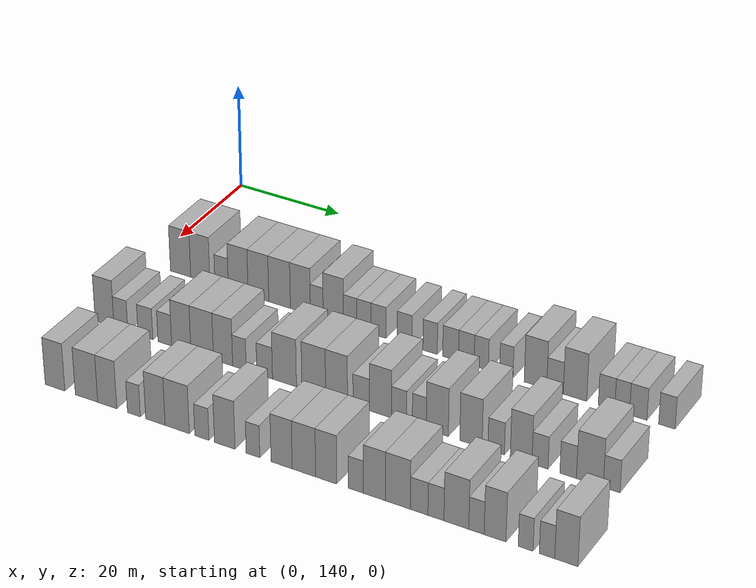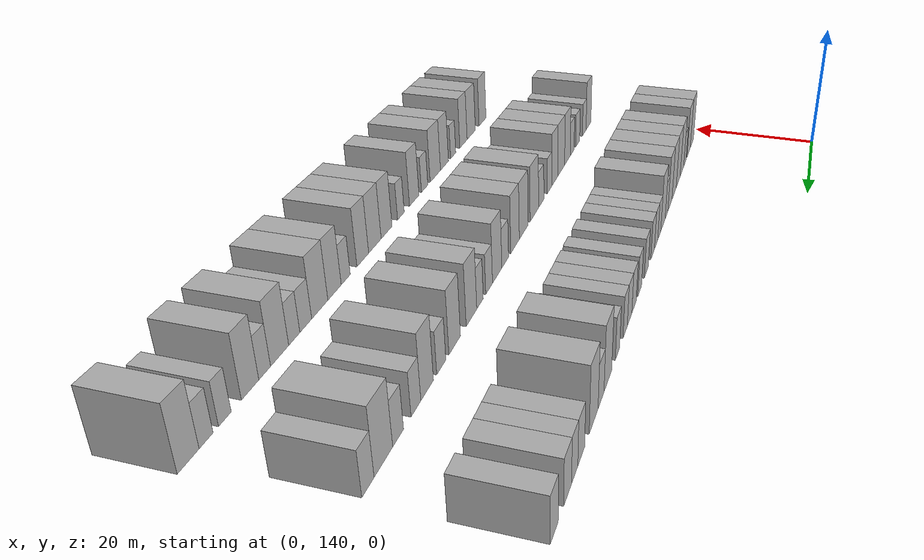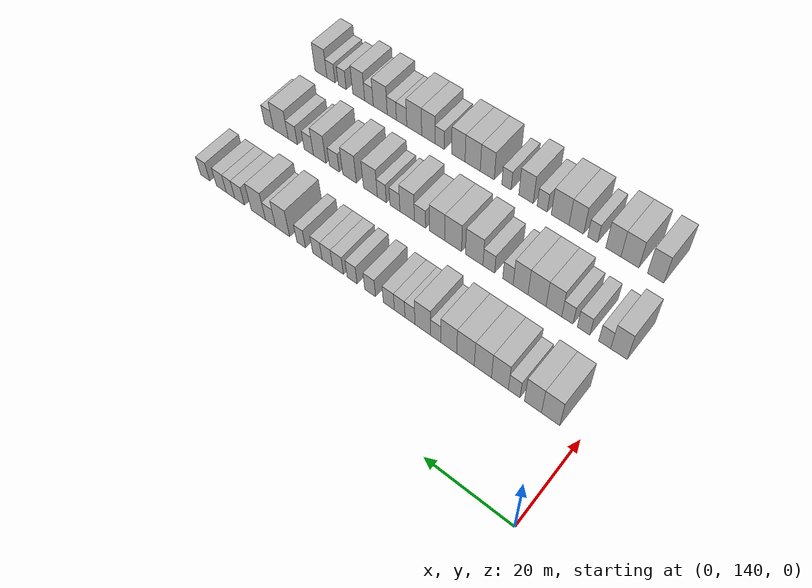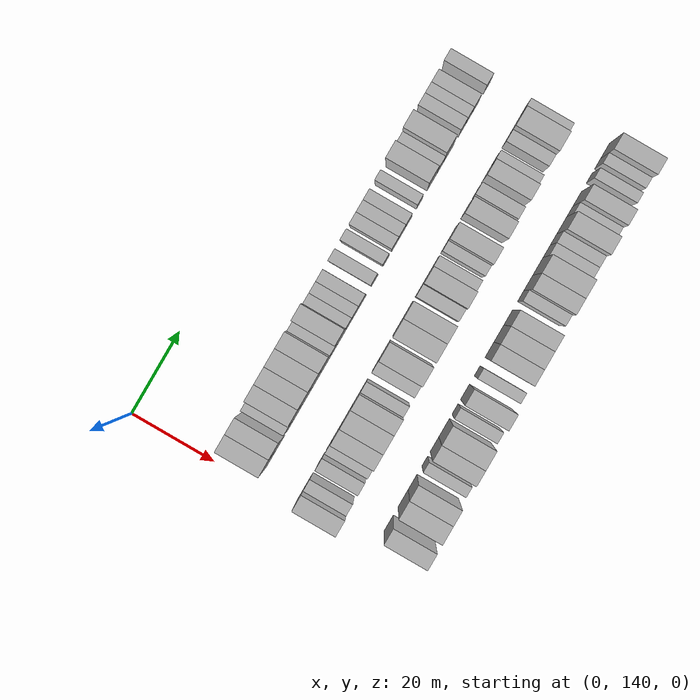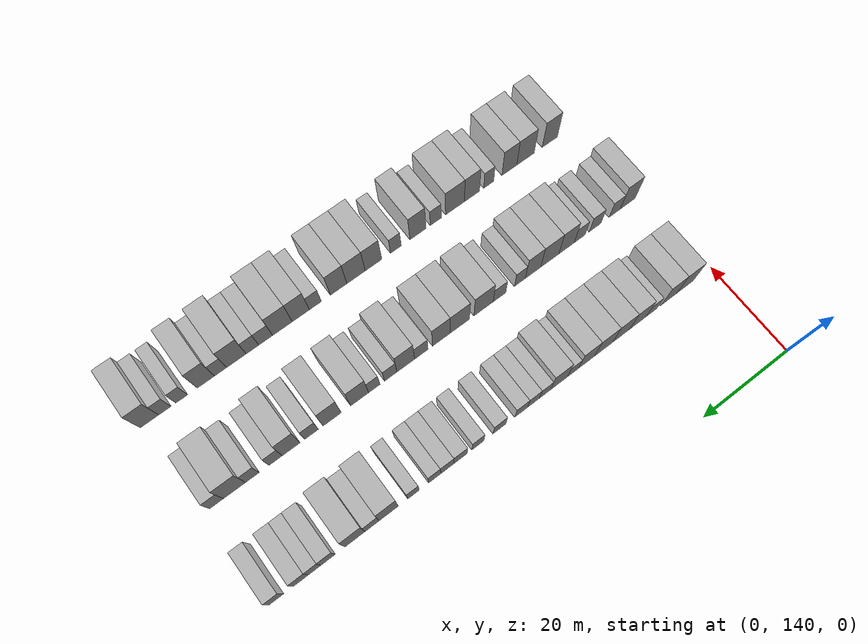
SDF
<sdf version="1.6">
 <world name="default">
  <model name="building_97">
   <static>1</static>
   <pose>25.0000 146.4809 0 0.000000 0.000000 0.000000</pose>
   <link name="link">
    <pose>0 0 4.50 0 0 0</pose>
    <collision name="collision"><geometry><box><size>10.0000 4.0576 9.0000</size></box></geometry></collision>
    <visual name="visual">
     <cast_shadows>0</cast_shadows>
     <geometry><box><size>10.0000 4.0576 9.0000</size></box></geometry>
     <material>
      <script>
       <uri>model://HANNAS_wall/materials/scripts</uri>
       <uri>model://HANNAS_wall/materials/textures</uri>
       <name>vrc/HANNAS_wall</name>
      </script>
     </material>
    </visual>
   </link>
  </model>
  <model name="building_98">
   <static>1</static>
   <pose>25.0000 150.4215 0 0.000000 0.000000 0.000000</pose>
   <link name="link">
    <pose>0 0 4.50 0 0 0</pose>
    <collision name="collision"><geometry><box><size>10.0000 3.8236 9.0000</size></box></geometry></collision>
    <visual name="visual">
     <cast_shadows>0</cast_shadows>
     <geometry><box><size>10.0000 3.8236 9.0000</size></box></geometry>
     <material>
      <script>
       <uri>model://HANNAS_wall/materials/scripts</uri>
       <uri>model://HANNAS_wall/materials/textures</uri>
       <name>vrc/HANNAS_wall</name>
      </script>
     </material>
    </visual>
   </link>
  </model>
  <model name="building_99">
   <static>1</static>
   <pose>25.0000 154.6576 0 0.000000 0.000000 0.000000</pose>
   <link name="link">
    <pose>0 0 3.00 0 0 0</pose>
    <collision name="collision"><geometry><box><size>10.0000 2.6486 6.0000</size></box></geometry></collision>
    <visual name="visual">
     <cast_shadows>0</cast_shadows>
     <geometry><box><size>10.0000 2.6486 6.0000</size></box></geometry>
     <material>
      <script>
       <uri>model://HANNAS_wall/materials/scripts</uri>
       <uri>model://HANNAS_wall/materials/textures</uri>
       <name>vrc/HANNAS_wall</name>
      </script>
     </material>
    </visual>
   </link>
  </model>
  <model name="building_100">
   <static>1</static>
   <pose>25.0000 157.9257 0 0.000000 0.000000 0.000000</pose>
   <link name="link">
    <pose>0 0 4.50 0 0 0</pose>
    <collision name="collision"><geometry><box><size>10.0000 3.8875 9.0000</size></box></geometry></collision>
    <visual name="visual">
     <cast_shadows>0</cast_shadows>
     <geometry><box><size>10.0000 3.8875 9.0000</size></box></geometry>
     <material>
      <script>
       <uri>model://HANNAS_wall/materials/scripts</uri>
       <uri>model://HANNAS_wall/materials/textures</uri>
       <name>vrc/HANNAS_wall</name>
      </script>
     </material>
    </visual>
   </link>
  </model>
  <model name="building_101">
   <static>1</static>
   <pose>25.0000 161.8803 0 0.000000 0.000000 0.000000</pose>
   <link name="link">
    <pose>0 0 4.50 0 0 0</pose>
    <collision name="collision"><geometry><box><size>10.0000 4.0218 9.0000</size></box></geometry></collision>
    <visual name="visual">
     <cast_shadows>0</cast_shadows>
     <geometry><box><size>10.0000 4.0218 9.0000</size></box></geometry>
     <material>
      <script>
       <uri>model://HANNAS_wall/materials/scripts</uri>
       <uri>model://HANNAS_wall/materials/textures</uri>
       <name>vrc/HANNAS_wall</name>
      </script>
     </material>
    </visual>
   </link>
  </model>
  <model name="building_102">
   <static>1</static>
   <pose>25.0000 165.9857 0 0.000000 0.000000 0.000000</pose>
   <link name="link">
    <pose>0 0 4.50 0 0 0</pose>
    <collision name="collision"><geometry><box><size>10.0000 4.1890 9.0000</size></box></geometry></collision>
    <visual name="visual">
     <cast_shadows>0</cast_shadows>
     <geometry><box><size>10.0000 4.1890 9.0000</size></box></geometry>
     <material>
      <script>
       <uri>model://HANNAS_wall/materials/scripts</uri>
       <uri>model://HANNAS_wall/materials/textures</uri>
       <name>vrc/HANNAS_wall</name>
      </script>
     </material>
    </visual>
   </link>
  </model>
  <model name="building_103">
   <static>1</static>
   <pose>25.0000 170.0028 0 0.000000 0.000000 0.000000</pose>
   <link name="link">
    <pose>0 0 4.50 0 0 0</pose>
    <collision name="collision"><geometry><box><size>10.0000 3.8452 9.0000</size></box></geometry></collision>
    <visual name="visual">
     <cast_shadows>0</cast_shadows>
     <geometry><box><size>10.0000 3.8452 9.0000</size></box></geometry>
     <material>
      <script>
       <uri>model://HANNAS_wall/materials/scripts</uri>
       <uri>model://HANNAS_wall/materials/textures</uri>
       <name>vrc/HANNAS_wall</name>
      </script>
     </material>
    </visual>
   </link>
  </model>
  <model name="building_104">
   <static>1</static>
   <pose>25.0000 173.1505 0 0.000000 0.000000 0.000000</pose>
   <link name="link">
    <pose>0 0 3.00 0 0 0</pose>
    <collision name="collision"><geometry><box><size>10.0000 2.4502 6.0000</size></box></geometry></collision>
    <visual name="visual">
     <cast_shadows>0</cast_shadows>
     <geometry><box><size>10.0000 2.4502 6.0000</size></box></geometry>
     <material>
      <script>
       <uri>model://HANNAS_wall/materials/scripts</uri>
       <uri>model://HANNAS_wall/materials/textures</uri>
       <name>vrc/HANNAS_wall</name>
      </script>
     </material>
    </visual>
   </link>
  </model>
  <model name="building_105">
   <static>1</static>
   <pose>25.0000 176.3116 0 0.000000 0.000000 0.000000</pose>
   <link name="link">
    <pose>0 0 4.50 0 0 0</pose>
    <collision name="collision"><geometry><box><size>10.0000 3.8720 9.0000</size></box></geometry></collision>
    <visual name="visual">
     <cast_shadows>0</cast_shadows>
     <geometry><box><size>10.0000 3.8720 9.0000</size></box></geometry>
     <material>
      <script>
       <uri>model://HANNAS_wall/materials/scripts</uri>
       <uri>model://HANNAS_wall/materials/textures</uri>
       <name>vrc/HANNAS_wall</name>
      </script>
     </material>
    </visual>
   </link>
  </model>
  <model name="building_106">
   <static>1</static>
   <pose>25.0000 179.4974 0 0.000000 0.000000 0.000000</pose>
   <link name="link">
    <pose>0 0 3.00 0 0 0</pose>
    <collision name="collision"><geometry><box><size>10.0000 2.4996 6.0000</size></box></geometry></collision>
    <visual name="visual">
     <cast_shadows>0</cast_shadows>
     <geometry><box><size>10.0000 2.4996 6.0000</size></box></geometry>
     <material>
      <script>
       <uri>model://HANNAS_wall/materials/scripts</uri>
       <uri>model://HANNAS_wall/materials/textures</uri>
       <name>vrc/HANNAS_wall</name>
      </script>
     </material>
    </visual>
   </link>
  </model>
  <model name="building_107">
   <static>1</static>
   <pose>25.0000 182.0925 0 0.000000 0.000000 0.000000</pose>
   <link name="link">
    <pose>0 0 3.00 0 0 0</pose>
    <collision name="collision"><geometry><box><size>10.0000 2.6905 6.0000</size></box></geometry></collision>
    <visual name="visual">
     <cast_shadows>0</cast_shadows>
     <geometry><box><size>10.0000 2.6905 6.0000</size></box></geometry>
     <material>
      <script>
       <uri>model://HANNAS_wall/materials/scripts</uri>
       <uri>model://HANNAS_wall/materials/textures</uri>
       <name>vrc/HANNAS_wall</name>
      </script>
     </material>
    </visual>
   </link>
  </model>
  <model name="building_108">
   <static>1</static>
   <pose>25.0000 184.8485 0 0.000000 0.000000 0.000000</pose>
   <link name="link">
    <pose>0 0 3.00 0 0 0</pose>
    <collision name="collision"><geometry><box><size>10.0000 2.8216 6.0000</size></box></geometry></collision>
    <visual name="visual">
     <cast_shadows>0</cast_shadows>
     <geometry><box><size>10.0000 2.8216 6.0000</size></box></geometry>
     <material>
      <script>
       <uri>model://HANNAS_wall/materials/scripts</uri>
       <uri>model://HANNAS_wall/materials/textures</uri>
       <name>vrc/HANNAS_wall</name>
      </script>
     </material>
    </visual>
   </link>
  </model>
  <model name="building_109">
   <static>1</static>
   <pose>25.0000 189.6686 0 0.000000 0.000000 0.000000</pose>
   <link name="link">
    <pose>0 0 3.00 0 0 0</pose>
    <collision name="collision"><geometry><box><size>10.0000 2.8185 6.0000</size></box></geometry></collision>
    <visual name="visual">
     <cast_shadows>0</cast_shadows>
     <geometry><box><size>10.0000 2.8185 6.0000</size></box></geometry>
     <material>
      <script>
       <uri>model://HANNAS_wall/materials/scripts</uri>
       <uri>model://HANNAS_wall/materials/textures</uri>
       <name>vrc/HANNAS_wall</name>
      </script>
     </material>
    </visual>
   </link>
  </model>
  <model name="building_110">
   <static>1</static>
   <pose>25.0000 194.3924 0 0.000000 0.000000 0.000000</pose>
   <link name="link">
    <pose>0 0 3.00 0 0 0</pose>
    <collision name="collision"><geometry><box><size>10.0000 2.6292 6.0000</size></box></geometry></collision>
    <visual name="visual">
     <cast_shadows>0</cast_shadows>
     <geometry><box><size>10.0000 2.6292 6.0000</size></box></geometry>
     <material>
      <script>
       <uri>model://HANNAS_wall/materials/scripts</uri>
       <uri>model://HANNAS_wall/materials/textures</uri>
       <name>vrc/HANNAS_wall</name>
      </script>
     </material>
    </visual>
   </link>
  </model>
  <model name="building_111">
   <static>1</static>
   <pose>25.0000 198.1490 0 0.000000 0.000000 0.000000</pose>
   <link name="link">
    <pose>0 0 3.00 0 0 0</pose>
    <collision name="collision"><geometry><box><size>10.0000 2.8839 6.0000</size></box></geometry></collision>
    <visual name="visual">
     <cast_shadows>0</cast_shadows>
     <geometry><box><size>10.0000 2.8839 6.0000</size></box></geometry>
     <material>
      <script>
       <uri>model://HANNAS_wall/materials/scripts</uri>
       <uri>model://HANNAS_wall/materials/textures</uri>
       <name>vrc/HANNAS_wall</name>
      </script>
     </material>
    </visual>
   </link>
  </model>
  <model name="building_112">
   <static>1</static>
   <pose>25.0000 201.0070 0 0.000000 0.000000 0.000000</pose>
   <link name="link">
    <pose>0 0 3.00 0 0 0</pose>
    <collision name="collision"><geometry><box><size>10.0000 2.8321 6.0000</size></box></geometry></collision>
    <visual name="visual">
     <cast_shadows>0</cast_shadows>
     <geometry><box><size>10.0000 2.8321 6.0000</size></box></geometry>
     <material>
      <script>
       <uri>model://HANNAS_wall/materials/scripts</uri>
       <uri>model://HANNAS_wall/materials/textures</uri>
       <name>vrc/HANNAS_wall</name>
      </script>
     </material>
    </visual>
   </link>
  </model>
  <model name="building_113">
   <static>1</static>
   <pose>25.0000 203.7072 0 0.000000 0.000000 0.000000</pose>
   <link name="link">
    <pose>0 0 3.00 0 0 0</pose>
    <collision name="collision"><geometry><box><size>10.0000 2.5684 6.0000</size></box></geometry></collision>
    <visual name="visual">
     <cast_shadows>0</cast_shadows>
     <geometry><box><size>10.0000 2.5684 6.0000</size></box></geometry>
     <material>
      <script>
       <uri>model://HANNAS_wall/materials/scripts</uri>
       <uri>model://HANNAS_wall/materials/textures</uri>
       <name>vrc/HANNAS_wall</name>
      </script>
     </material>
    </visual>
   </link>
  </model>
  <model name="building_114">
   <static>1</static>
   <pose>25.0000 208.1994 0 0.000000 0.000000 0.000000</pose>
   <link name="link">
    <pose>0 0 3.00 0 0 0</pose>
    <collision name="collision"><geometry><box><size>10.0000 2.4159 6.0000</size></box></geometry></collision>
    <visual name="visual">
     <cast_shadows>0</cast_shadows>
     <geometry><box><size>10.0000 2.4159 6.0000</size></box></geometry>
     <material>
      <script>
       <uri>model://HANNAS_wall/materials/scripts</uri>
       <uri>model://HANNAS_wall/materials/textures</uri>
       <name>vrc/HANNAS_wall</name>
      </script>
     </material>
    </visual>
   </link>
  </model>
  <model name="building_115">
   <static>1</static>
   <pose>25.0000 213.3983 0 0.000000 0.000000 0.000000</pose>
   <link name="link">
    <pose>0 0 4.50 0 0 0</pose>
    <collision name="collision"><geometry><box><size>10.0000 3.9820 9.0000</size></box></geometry></collision>
    <visual name="visual">
     <cast_shadows>0</cast_shadows>
     <geometry><box><size>10.0000 3.9820 9.0000</size></box></geometry>
     <material>
      <script>
       <uri>model://HANNAS_wall/materials/scripts</uri>
       <uri>model://HANNAS_wall/materials/textures</uri>
       <name>vrc/HANNAS_wall</name>
      </script>
     </material>
    </visual>
   </link>
  </model>
  <model name="building_116">
   <static>1</static>
   <pose>25.0000 216.8463 0 0.000000 0.000000 0.000000</pose>
   <link name="link">
    <pose>0 0 3.00 0 0 0</pose>
    <collision name="collision"><geometry><box><size>10.0000 2.9139 6.0000</size></box></geometry></collision>
    <visual name="visual">
     <cast_shadows>0</cast_shadows>
     <geometry><box><size>10.0000 2.9139 6.0000</size></box></geometry>
     <material>
      <script>
       <uri>model://HANNAS_wall/materials/scripts</uri>
       <uri>model://HANNAS_wall/materials/textures</uri>
       <name>vrc/HANNAS_wall</name>
      </script>
     </material>
    </visual>
   </link>
  </model>
  <model name="building_117">
   <static>1</static>
   <pose>25.0000 220.3592 0 0.000000 0.000000 0.000000</pose>
   <link name="link">
    <pose>0 0 4.50 0 0 0</pose>
    <collision name="collision"><geometry><box><size>10.0000 4.1120 9.0000</size></box></geometry></collision>
    <visual name="visual">
     <cast_shadows>0</cast_shadows>
     <geometry><box><size>10.0000 4.1120 9.0000</size></box></geometry>
     <material>
      <script>
       <uri>model://HANNAS_wall/materials/scripts</uri>
       <uri>model://HANNAS_wall/materials/textures</uri>
       <name>vrc/HANNAS_wall</name>
      </script>
     </material>
    </visual>
   </link>
  </model>
  <model name="building_118">
   <static>1</static>
   <pose>25.0000 225.8387 0 0.000000 0.000000 0.000000</pose>
   <link name="link">
    <pose>0 0 3.00 0 0 0</pose>
    <collision name="collision"><geometry><box><size>10.0000 2.8470 6.0000</size></box></geometry></collision>
    <visual name="visual">
     <cast_shadows>0</cast_shadows>
     <geometry><box><size>10.0000 2.8470 6.0000</size></box></geometry>
     <material>
      <script>
       <uri>model://HANNAS_wall/materials/scripts</uri>
       <uri>model://HANNAS_wall/materials/textures</uri>
       <name>vrc/HANNAS_wall</name>
      </script>
     </material>
    </visual>
   </link>
  </model>
  <model name="building_119">
   <static>1</static>
   <pose>25.0000 228.5293 0 0.000000 0.000000 0.000000</pose>
   <link name="link">
    <pose>0 0 3.00 0 0 0</pose>
    <collision name="collision"><geometry><box><size>10.0000 2.5342 6.0000</size></box></geometry></collision>
    <visual name="visual">
     <cast_shadows>0</cast_shadows>
     <geometry><box><size>10.0000 2.5342 6.0000</size></box></geometry>
     <material>
      <script>
       <uri>model://HANNAS_wall/materials/scripts</uri>
       <uri>model://HANNAS_wall/materials/textures</uri>
       <name>vrc/HANNAS_wall</name>
      </script>
     </material>
    </visual>
   </link>
  </model>
  <model name="building_120">
   <static>1</static>
   <pose>25.0000 231.2930 0 0.000000 0.000000 0.000000</pose>
   <link name="link">
    <pose>0 0 3.00 0 0 0</pose>
    <collision name="collision"><geometry><box><size>10.0000 2.9931 6.0000</size></box></geometry></collision>
    <visual name="visual">
     <cast_shadows>0</cast_shadows>
     <geometry><box><size>10.0000 2.9931 6.0000</size></box></geometry>
     <material>
      <script>
       <uri>model://HANNAS_wall/materials/scripts</uri>
       <uri>model://HANNAS_wall/materials/textures</uri>
       <name>vrc/HANNAS_wall</name>
      </script>
     </material>
    </visual>
   </link>
  </model>
  <model name="building_121">
   <static>1</static>
   <pose>25.0000 236.1797 0 0.000000 0.000000 0.000000</pose>
   <link name="link">
    <pose>0 0 3.00 0 0 0</pose>
    <collision name="collision"><geometry><box><size>10.0000 2.7804 6.0000</size></box></geometry></collision>
    <visual name="visual">
     <cast_shadows>0</cast_shadows>
     <geometry><box><size>10.0000 2.7804 6.0000</size></box></geometry>
     <material>
      <script>
       <uri>model://HANNAS_wall/materials/scripts</uri>
       <uri>model://HANNAS_wall/materials/textures</uri>
       <name>vrc/HANNAS_wall</name>
      </script>
     </material>
    </visual>
   </link>
  </model>
  <model name="building_217">
   <static>1</static>
   <pose>44.0000 143.8967 0 0.000000 0.000000 0.000000</pose>
   <link name="link">
    <pose>0 0 4.50 0 0 0</pose>
    <collision name="collision"><geometry><box><size>10.0000 3.7177 9.0000</size></box></geometry></collision>
    <visual name="visual">
     <cast_shadows>0</cast_shadows>
     <geometry><box><size>10.0000 3.7177 9.0000</size></box></geometry>
     <material>
      <script>
       <uri>model://HANNAS_wall/materials/scripts</uri>
       <uri>model://HANNAS_wall/materials/textures</uri>
       <name>vrc/HANNAS_wall</name>
      </script>
     </material>
    </visual>
   </link>
  </model>
  <model name="building_218">
   <static>1</static>
   <pose>44.0000 147.1160 0 0.000000 0.000000 0.000000</pose>
   <link name="link">
    <pose>0 0 3.00 0 0 0</pose>
    <collision name="collision"><geometry><box><size>10.0000 2.7210 6.0000</size></box></geometry></collision>
    <visual name="visual">
     <cast_shadows>0</cast_shadows>
     <geometry><box><size>10.0000 2.7210 6.0000</size></box></geometry>
     <material>
      <script>
       <uri>model://HANNAS_wall/materials/scripts</uri>
       <uri>model://HANNAS_wall/materials/textures</uri>
       <name>vrc/HANNAS_wall</name>
      </script>
     </material>
    </visual>
   </link>
  </model>
  <model name="building_219">
   <static>1</static>
   <pose>44.0000 151.9204 0 0.000000 0.000000 0.000000</pose>
   <link name="link">
    <pose>0 0 3.00 0 0 0</pose>
    <collision name="collision"><geometry><box><size>10.0000 2.8877 6.0000</size></box></geometry></collision>
    <visual name="visual">
     <cast_shadows>0</cast_shadows>
     <geometry><box><size>10.0000 2.8877 6.0000</size></box></geometry>
     <material>
      <script>
       <uri>model://HANNAS_wall/materials/scripts</uri>
       <uri>model://HANNAS_wall/materials/textures</uri>
       <name>vrc/HANNAS_wall</name>
      </script>
     </material>
    </visual>
   </link>
  </model>
  <model name="building_220">
   <static>1</static>
   <pose>44.0000 155.6818 0 0.000000 0.000000 0.000000</pose>
   <link name="link">
    <pose>0 0 3.00 0 0 0</pose>
    <collision name="collision"><geometry><box><size>10.0000 2.6350 6.0000</size></box></geometry></collision>
    <visual name="visual">
     <cast_shadows>0</cast_shadows>
     <geometry><box><size>10.0000 2.6350 6.0000</size></box></geometry>
     <material>
      <script>
       <uri>model://HANNAS_wall/materials/scripts</uri>
       <uri>model://HANNAS_wall/materials/textures</uri>
       <name>vrc/HANNAS_wall</name>
      </script>
     </material>
    </visual>
   </link>
  </model>
  <model name="building_221">
   <static>1</static>
   <pose>44.0000 158.8513 0 0.000000 0.000000 0.000000</pose>
   <link name="link">
    <pose>0 0 4.50 0 0 0</pose>
    <collision name="collision"><geometry><box><size>10.0000 3.7040 9.0000</size></box></geometry></collision>
    <visual name="visual">
     <cast_shadows>0</cast_shadows>
     <geometry><box><size>10.0000 3.7040 9.0000</size></box></geometry>
     <material>
      <script>
       <uri>model://HANNAS_wall/materials/scripts</uri>
       <uri>model://HANNAS_wall/materials/textures</uri>
       <name>vrc/HANNAS_wall</name>
      </script>
     </material>
    </visual>
   </link>
  </model>
  <model name="building_222">
   <static>1</static>
   <pose>44.0000 162.8628 0 0.000000 0.000000 0.000000</pose>
   <link name="link">
    <pose>0 0 4.50 0 0 0</pose>
    <collision name="collision"><geometry><box><size>10.0000 4.3189 9.0000</size></box></geometry></collision>
    <visual name="visual">
     <cast_shadows>0</cast_shadows>
     <geometry><box><size>10.0000 4.3189 9.0000</size></box></geometry>
     <material>
      <script>
       <uri>model://HANNAS_wall/materials/scripts</uri>
       <uri>model://HANNAS_wall/materials/textures</uri>
       <name>vrc/HANNAS_wall</name>
      </script>
     </material>
    </visual>
   </link>
  </model>
  <model name="building_223">
   <static>1</static>
   <pose>44.0000 166.8400 0 0.000000 0.000000 0.000000</pose>
   <link name="link">
    <pose>0 0 4.50 0 0 0</pose>
    <collision name="collision"><geometry><box><size>10.0000 3.6355 9.0000</size></box></geometry></collision>
    <visual name="visual">
     <cast_shadows>0</cast_shadows>
     <geometry><box><size>10.0000 3.6355 9.0000</size></box></geometry>
     <material>
      <script>
       <uri>model://HANNAS_wall/materials/scripts</uri>
       <uri>model://HANNAS_wall/materials/textures</uri>
       <name>vrc/HANNAS_wall</name>
      </script>
     </material>
    </visual>
   </link>
  </model>
  <model name="building_224">
   <static>1</static>
   <pose>44.0000 169.9285 0 0.000000 0.000000 0.000000</pose>
   <link name="link">
    <pose>0 0 3.00 0 0 0</pose>
    <collision name="collision"><geometry><box><size>10.0000 2.5414 6.0000</size></box></geometry></collision>
    <visual name="visual">
     <cast_shadows>0</cast_shadows>
     <geometry><box><size>10.0000 2.5414 6.0000</size></box></geometry>
     <material>
      <script>
       <uri>model://HANNAS_wall/materials/scripts</uri>
       <uri>model://HANNAS_wall/materials/textures</uri>
       <name>vrc/HANNAS_wall</name>
      </script>
     </material>
    </visual>
   </link>
  </model>
  <model name="building_225">
   <static>1</static>
   <pose>44.0000 174.6555 0 0.000000 0.000000 0.000000</pose>
   <link name="link">
    <pose>0 0 3.00 0 0 0</pose>
    <collision name="collision"><geometry><box><size>10.0000 2.9126 6.0000</size></box></geometry></collision>
    <visual name="visual">
     <cast_shadows>0</cast_shadows>
     <geometry><box><size>10.0000 2.9126 6.0000</size></box></geometry>
     <material>
      <script>
       <uri>model://HANNAS_wall/materials/scripts</uri>
       <uri>model://HANNAS_wall/materials/textures</uri>
       <name>vrc/HANNAS_wall</name>
      </script>
     </material>
    </visual>
   </link>
  </model>
  <model name="building_226">
   <static>1</static>
   <pose>44.0000 178.3353 0 0.000000 0.000000 0.000000</pose>
   <link name="link">
    <pose>0 0 4.50 0 0 0</pose>
    <collision name="collision"><geometry><box><size>10.0000 4.4472 9.0000</size></box></geometry></collision>
    <visual name="visual">
     <cast_shadows>0</cast_shadows>
     <geometry><box><size>10.0000 4.4472 9.0000</size></box></geometry>
     <material>
      <script>
       <uri>model://HANNAS_wall/materials/scripts</uri>
       <uri>model://HANNAS_wall/materials/textures</uri>
       <name>vrc/HANNAS_wall</name>
      </script>
     </material>
    </visual>
   </link>
  </model>
  <model name="building_227">
   <static>1</static>
   <pose>44.0000 183.7248 0 0.000000 0.000000 0.000000</pose>
   <link name="link">
    <pose>0 0 4.50 0 0 0</pose>
    <collision name="collision"><geometry><box><size>10.0000 4.3318 9.0000</size></box></geometry></collision>
    <visual name="visual">
     <cast_shadows>0</cast_shadows>
     <geometry><box><size>10.0000 4.3318 9.0000</size></box></geometry>
     <material>
      <script>
       <uri>model://HANNAS_wall/materials/scripts</uri>
       <uri>model://HANNAS_wall/materials/textures</uri>
       <name>vrc/HANNAS_wall</name>
      </script>
     </material>
    </visual>
   </link>
  </model>
  <model name="building_228">
   <static>1</static>
   <pose>44.0000 187.8967 0 0.000000 0.000000 0.000000</pose>
   <link name="link">
    <pose>0 0 4.50 0 0 0</pose>
    <collision name="collision"><geometry><box><size>10.0000 4.0120 9.0000</size></box></geometry></collision>
    <visual name="visual">
     <cast_shadows>0</cast_shadows>
     <geometry><box><size>10.0000 4.0120 9.0000</size></box></geometry>
     <material>
      <script>
       <uri>model://HANNAS_wall/materials/scripts</uri>
       <uri>model://HANNAS_wall/materials/textures</uri>
       <name>vrc/HANNAS_wall</name>
      </script>
     </material>
    </visual>
   </link>
  </model>
  <model name="building_229">
   <static>1</static>
   <pose>44.0000 192.3896 0 0.000000 0.000000 0.000000</pose>
   <link name="link">
    <pose>0 0 3.00 0 0 0</pose>
    <collision name="collision"><geometry><box><size>10.0000 2.9737 6.0000</size></box></geometry></collision>
    <visual name="visual">
     <cast_shadows>0</cast_shadows>
     <geometry><box><size>10.0000 2.9737 6.0000</size></box></geometry>
     <material>
      <script>
       <uri>model://HANNAS_wall/materials/scripts</uri>
       <uri>model://HANNAS_wall/materials/textures</uri>
       <name>vrc/HANNAS_wall</name>
      </script>
     </material>
    </visual>
   </link>
  </model>
  <model name="building_230">
   <static>1</static>
   <pose>44.0000 195.8358 0 0.000000 0.000000 0.000000</pose>
   <link name="link">
    <pose>0 0 4.50 0 0 0</pose>
    <collision name="collision"><geometry><box><size>10.0000 3.9187 9.0000</size></box></geometry></collision>
    <visual name="visual">
     <cast_shadows>0</cast_shadows>
     <geometry><box><size>10.0000 3.9187 9.0000</size></box></geometry>
     <material>
      <script>
       <uri>model://HANNAS_wall/materials/scripts</uri>
       <uri>model://HANNAS_wall/materials/textures</uri>
       <name>vrc/HANNAS_wall</name>
      </script>
     </material>
    </visual>
   </link>
  </model>
  <model name="building_231">
   <static>1</static>
   <pose>44.0000 199.1499 0 0.000000 0.000000 0.000000</pose>
   <link name="link">
    <pose>0 0 3.00 0 0 0</pose>
    <collision name="collision"><geometry><box><size>10.0000 2.7095 6.0000</size></box></geometry></collision>
    <visual name="visual">
     <cast_shadows>0</cast_shadows>
     <geometry><box><size>10.0000 2.7095 6.0000</size></box></geometry>
     <material>
      <script>
       <uri>model://HANNAS_wall/materials/scripts</uri>
       <uri>model://HANNAS_wall/materials/textures</uri>
       <name>vrc/HANNAS_wall</name>
      </script>
     </material>
    </visual>
   </link>
  </model>
  <model name="building_232">
   <static>1</static>
   <pose>44.0000 202.7410 0 0.000000 0.000000 0.000000</pose>
   <link name="link">
    <pose>0 0 3.00 0 0 0</pose>
    <collision name="collision"><geometry><box><size>10.0000 2.4726 6.0000</size></box></geometry></collision>
    <visual name="visual">
     <cast_shadows>0</cast_shadows>
     <geometry><box><size>10.0000 2.4726 6.0000</size></box></geometry>
     <material>
      <script>
       <uri>model://HANNAS_wall/materials/scripts</uri>
       <uri>model://HANNAS_wall/materials/textures</uri>
       <name>vrc/HANNAS_wall</name>
      </script>
     </material>
    </visual>
   </link>
  </model>
  <model name="building_233">
   <static>1</static>
   <pose>44.0000 205.9158 0 0.000000 0.000000 0.000000</pose>
   <link name="link">
    <pose>0 0 4.50 0 0 0</pose>
    <collision name="collision"><geometry><box><size>10.0000 3.8771 9.0000</size></box></geometry></collision>
    <visual name="visual">
     <cast_shadows>0</cast_shadows>
     <geometry><box><size>10.0000 3.8771 9.0000</size></box></geometry>
     <material>
      <script>
       <uri>model://HANNAS_wall/materials/scripts</uri>
       <uri>model://HANNAS_wall/materials/textures</uri>
       <name>vrc/HANNAS_wall</name>
      </script>
     </material>
    </visual>
   </link>
  </model>
  <model name="building_234">
   <static>1</static>
   <pose>44.0000 211.7915 0 0.000000 0.000000 0.000000</pose>
   <link name="link">
    <pose>0 0 4.50 0 0 0</pose>
    <collision name="collision"><geometry><box><size>10.0000 3.8743 9.0000</size></box></geometry></collision>
    <visual name="visual">
     <cast_shadows>0</cast_shadows>
     <geometry><box><size>10.0000 3.8743 9.0000</size></box></geometry>
     <material>
      <script>
       <uri>model://HANNAS_wall/materials/scripts</uri>
       <uri>model://HANNAS_wall/materials/textures</uri>
       <name>vrc/HANNAS_wall</name>
      </script>
     </material>
    </visual>
   </link>
  </model>
  <model name="building_235">
   <static>1</static>
   <pose>44.0000 216.1521 0 0.000000 0.000000 0.000000</pose>
   <link name="link">
    <pose>0 0 3.00 0 0 0</pose>
    <collision name="collision"><geometry><box><size>10.0000 2.8471 6.0000</size></box></geometry></collision>
    <visual name="visual">
     <cast_shadows>0</cast_shadows>
     <geometry><box><size>10.0000 2.8471 6.0000</size></box></geometry>
     <material>
      <script>
       <uri>model://HANNAS_wall/materials/scripts</uri>
       <uri>model://HANNAS_wall/materials/textures</uri>
       <name>vrc/HANNAS_wall</name>
      </script>
     </material>
    </visual>
   </link>
  </model>
  <model name="building_236">
   <static>1</static>
   <pose>44.0000 220.4218 0 0.000000 0.000000 0.000000</pose>
   <link name="link">
    <pose>0 0 4.50 0 0 0</pose>
    <collision name="collision"><geometry><box><size>10.0000 3.6923 9.0000</size></box></geometry></collision>
    <visual name="visual">
     <cast_shadows>0</cast_shadows>
     <geometry><box><size>10.0000 3.6923 9.0000</size></box></geometry>
     <material>
      <script>
       <uri>model://HANNAS_wall/materials/scripts</uri>
       <uri>model://HANNAS_wall/materials/textures</uri>
       <name>vrc/HANNAS_wall</name>
      </script>
     </material>
    </visual>
   </link>
  </model>
  <model name="building_237">
   <static>1</static>
   <pose>44.0000 223.6357 0 0.000000 0.000000 0.000000</pose>
   <link name="link">
    <pose>0 0 3.00 0 0 0</pose>
    <collision name="collision"><geometry><box><size>10.0000 2.7354 6.0000</size></box></geometry></collision>
    <visual name="visual">
     <cast_shadows>0</cast_shadows>
     <geometry><box><size>10.0000 2.7354 6.0000</size></box></geometry>
     <material>
      <script>
       <uri>model://HANNAS_wall/materials/scripts</uri>
       <uri>model://HANNAS_wall/materials/textures</uri>
       <name>vrc/HANNAS_wall</name>
      </script>
     </material>
    </visual>
   </link>
  </model>
  <model name="building_238">
   <static>1</static>
   <pose>44.0000 228.3925 0 0.000000 0.000000 0.000000</pose>
   <link name="link">
    <pose>0 0 3.00 0 0 0</pose>
    <collision name="collision"><geometry><box><size>10.0000 2.7782 6.0000</size></box></geometry></collision>
    <visual name="visual">
     <cast_shadows>0</cast_shadows>
     <geometry><box><size>10.0000 2.7782 6.0000</size></box></geometry>
     <material>
      <script>
       <uri>model://HANNAS_wall/materials/scripts</uri>
       <uri>model://HANNAS_wall/materials/textures</uri>
       <name>vrc/HANNAS_wall</name>
      </script>
     </material>
    </visual>
   </link>
  </model>
  <model name="building_239">
   <static>1</static>
   <pose>44.0000 232.0194 0 0.000000 0.000000 0.000000</pose>
   <link name="link">
    <pose>0 0 4.50 0 0 0</pose>
    <collision name="collision"><geometry><box><size>10.0000 4.4756 9.0000</size></box></geometry></collision>
    <visual name="visual">
     <cast_shadows>0</cast_shadows>
     <geometry><box><size>10.0000 4.4756 9.0000</size></box></geometry>
     <material>
      <script>
       <uri>model://HANNAS_wall/materials/scripts</uri>
       <uri>model://HANNAS_wall/materials/textures</uri>
       <name>vrc/HANNAS_wall</name>
      </script>
     </material>
    </visual>
   </link>
  </model>
  <model name="building_240">
   <static>1</static>
   <pose>44.0000 235.6505 0 0.000000 0.000000 0.000000</pose>
   <link name="link">
    <pose>0 0 3.00 0 0 0</pose>
    <collision name="collision"><geometry><box><size>10.0000 2.7866 6.0000</size></box></geometry></collision>
    <visual name="visual">
     <cast_shadows>0</cast_shadows>
     <geometry><box><size>10.0000 2.7866 6.0000</size></box></geometry>
     <material>
      <script>
       <uri>model://HANNAS_wall/materials/scripts</uri>
       <uri>model://HANNAS_wall/materials/textures</uri>
       <name>vrc/HANNAS_wall</name>
      </script>
     </material>
    </visual>
   </link>
  </model>
  <model name="building_339">
   <static>1</static>
   <pose>63.0000 147.3282 0 0.000000 0.000000 0.000000</pose>
   <link name="link">
    <pose>0 0 4.50 0 0 0</pose>
    <collision name="collision"><geometry><box><size>10.0000 3.7838 9.0000</size></box></geometry></collision>
    <visual name="visual">
     <cast_shadows>0</cast_shadows>
     <geometry><box><size>10.0000 3.7838 9.0000</size></box></geometry>
     <material>
      <script>
       <uri>model://HANNAS_wall/materials/scripts</uri>
       <uri>model://HANNAS_wall/materials/textures</uri>
       <name>vrc/HANNAS_wall</name>
      </script>
     </material>
    </visual>
   </link>
  </model>
  <model name="building_340">
   <static>1</static>
   <pose>63.0000 153.3513 0 0.000000 0.000000 0.000000</pose>
   <link name="link">
    <pose>0 0 4.50 0 0 0</pose>
    <collision name="collision"><geometry><box><size>10.0000 4.2625 9.0000</size></box></geometry></collision>
    <visual name="visual">
     <cast_shadows>0</cast_shadows>
     <geometry><box><size>10.0000 4.2625 9.0000</size></box></geometry>
     <material>
      <script>
       <uri>model://HANNAS_wall/materials/scripts</uri>
       <uri>model://HANNAS_wall/materials/textures</uri>
       <name>vrc/HANNAS_wall</name>
      </script>
     </material>
    </visual>
   </link>
  </model>
  <model name="building_341">
   <static>1</static>
   <pose>63.0000 157.2907 0 0.000000 0.000000 0.000000</pose>
   <link name="link">
    <pose>0 0 4.50 0 0 0</pose>
    <collision name="collision"><geometry><box><size>10.0000 3.6162 9.0000</size></box></geometry></collision>
    <visual name="visual">
     <cast_shadows>0</cast_shadows>
     <geometry><box><size>10.0000 3.6162 9.0000</size></box></geometry>
     <material>
      <script>
       <uri>model://HANNAS_wall/materials/scripts</uri>
       <uri>model://HANNAS_wall/materials/textures</uri>
       <name>vrc/HANNAS_wall</name>
      </script>
     </material>
    </visual>
   </link>
  </model>
  <model name="building_342">
   <static>1</static>
   <pose>63.0000 162.3043 0 0.000000 0.000000 0.000000</pose>
   <link name="link">
    <pose>0 0 3.00 0 0 0</pose>
    <collision name="collision"><geometry><box><size>10.0000 2.4110 6.0000</size></box></geometry></collision>
    <visual name="visual">
     <cast_shadows>0</cast_shadows>
     <geometry><box><size>10.0000 2.4110 6.0000</size></box></geometry>
     <material>
      <script>
       <uri>model://HANNAS_wall/materials/scripts</uri>
       <uri>model://HANNAS_wall/materials/textures</uri>
       <name>vrc/HANNAS_wall</name>
      </script>
     </material>
    </visual>
   </link>
  </model>
  <model name="building_343">
   <static>1</static>
   <pose>63.0000 166.3162 0 0.000000 0.000000 0.000000</pose>
   <link name="link">
    <pose>0 0 4.50 0 0 0</pose>
    <collision name="collision"><geometry><box><size>10.0000 3.6127 9.0000</size></box></geometry></collision>
    <visual name="visual">
     <cast_shadows>0</cast_shadows>
     <geometry><box><size>10.0000 3.6127 9.0000</size></box></geometry>
     <material>
      <script>
       <uri>model://HANNAS_wall/materials/scripts</uri>
       <uri>model://HANNAS_wall/materials/textures</uri>
       <name>vrc/HANNAS_wall</name>
      </script>
     </material>
    </visual>
   </link>
  </model>
  <model name="building_344">
   <static>1</static>
   <pose>63.0000 170.3551 0 0.000000 0.000000 0.000000</pose>
   <link name="link">
    <pose>0 0 4.50 0 0 0</pose>
    <collision name="collision"><geometry><box><size>10.0000 4.4651 9.0000</size></box></geometry></collision>
    <visual name="visual">
     <cast_shadows>0</cast_shadows>
     <geometry><box><size>10.0000 4.4651 9.0000</size></box></geometry>
     <material>
      <script>
       <uri>model://HANNAS_wall/materials/scripts</uri>
       <uri>model://HANNAS_wall/materials/textures</uri>
       <name>vrc/HANNAS_wall</name>
      </script>
     </material>
    </visual>
   </link>
  </model>
  <model name="building_345">
   <static>1</static>
   <pose>63.0000 174.8829 0 0.000000 0.000000 0.000000</pose>
   <link name="link">
    <pose>0 0 3.00 0 0 0</pose>
    <collision name="collision"><geometry><box><size>10.0000 2.5905 6.0000</size></box></geometry></collision>
    <visual name="visual">
     <cast_shadows>0</cast_shadows>
     <geometry><box><size>10.0000 2.5905 6.0000</size></box></geometry>
     <material>
      <script>
       <uri>model://HANNAS_wall/materials/scripts</uri>
       <uri>model://HANNAS_wall/materials/textures</uri>
       <name>vrc/HANNAS_wall</name>
      </script>
     </material>
    </visual>
   </link>
  </model>
  <model name="building_346">
   <static>1</static>
   <pose>63.0000 179.0421 0 0.000000 0.000000 0.000000</pose>
   <link name="link">
    <pose>0 0 4.50 0 0 0</pose>
    <collision name="collision"><geometry><box><size>10.0000 3.7279 9.0000</size></box></geometry></collision>
    <visual name="visual">
     <cast_shadows>0</cast_shadows>
     <geometry><box><size>10.0000 3.7279 9.0000</size></box></geometry>
     <material>
      <script>
       <uri>model://HANNAS_wall/materials/scripts</uri>
       <uri>model://HANNAS_wall/materials/textures</uri>
       <name>vrc/HANNAS_wall</name>
      </script>
     </material>
    </visual>
   </link>
  </model>
  <model name="building_347">
   <static>1</static>
   <pose>63.0000 184.1321 0 0.000000 0.000000 0.000000</pose>
   <link name="link">
    <pose>0 0 3.00 0 0 0</pose>
    <collision name="collision"><geometry><box><size>10.0000 2.4521 6.0000</size></box></geometry></collision>
    <visual name="visual">
     <cast_shadows>0</cast_shadows>
     <geometry><box><size>10.0000 2.4521 6.0000</size></box></geometry>
     <material>
      <script>
       <uri>model://HANNAS_wall/materials/scripts</uri>
       <uri>model://HANNAS_wall/materials/textures</uri>
       <name>vrc/HANNAS_wall</name>
      </script>
     </material>
    </visual>
   </link>
  </model>
  <model name="building_348">
   <static>1</static>
   <pose>63.0000 189.2357 0 0.000000 0.000000 0.000000</pose>
   <link name="link">
    <pose>0 0 4.50 0 0 0</pose>
    <collision name="collision"><geometry><box><size>10.0000 3.7552 9.0000</size></box></geometry></collision>
    <visual name="visual">
     <cast_shadows>0</cast_shadows>
     <geometry><box><size>10.0000 3.7552 9.0000</size></box></geometry>
     <material>
      <script>
       <uri>model://HANNAS_wall/materials/scripts</uri>
       <uri>model://HANNAS_wall/materials/textures</uri>
       <name>vrc/HANNAS_wall</name>
      </script>
     </material>
    </visual>
   </link>
  </model>
  <model name="building_349">
   <static>1</static>
   <pose>63.0000 193.1734 0 0.000000 0.000000 0.000000</pose>
   <link name="link">
    <pose>0 0 4.50 0 0 0</pose>
    <collision name="collision"><geometry><box><size>10.0000 4.1201 9.0000</size></box></geometry></collision>
    <visual name="visual">
     <cast_shadows>0</cast_shadows>
     <geometry><box><size>10.0000 4.1201 9.0000</size></box></geometry>
     <material>
      <script>
       <uri>model://HANNAS_wall/materials/scripts</uri>
       <uri>model://HANNAS_wall/materials/textures</uri>
       <name>vrc/HANNAS_wall</name>
      </script>
     </material>
    </visual>
   </link>
  </model>
  <model name="building_350">
   <static>1</static>
   <pose>63.0000 197.0765 0 0.000000 0.000000 0.000000</pose>
   <link name="link">
    <pose>0 0 4.50 0 0 0</pose>
    <collision name="collision"><geometry><box><size>10.0000 3.6860 9.0000</size></box></geometry></collision>
    <visual name="visual">
     <cast_shadows>0</cast_shadows>
     <geometry><box><size>10.0000 3.6860 9.0000</size></box></geometry>
     <material>
      <script>
       <uri>model://HANNAS_wall/materials/scripts</uri>
       <uri>model://HANNAS_wall/materials/textures</uri>
       <name>vrc/HANNAS_wall</name>
      </script>
     </material>
    </visual>
   </link>
  </model>
  <model name="building_351">
   <static>1</static>
   <pose>63.0000 202.2410 0 0.000000 0.000000 0.000000</pose>
   <link name="link">
    <pose>0 0 3.00 0 0 0</pose>
    <collision name="collision"><geometry><box><size>10.0000 2.6431 6.0000</size></box></geometry></collision>
    <visual name="visual">
     <cast_shadows>0</cast_shadows>
     <geometry><box><size>10.0000 2.6431 6.0000</size></box></geometry>
     <material>
      <script>
       <uri>model://HANNAS_wall/materials/scripts</uri>
       <uri>model://HANNAS_wall/materials/textures</uri>
       <name>vrc/HANNAS_wall</name>
      </script>
     </material>
    </visual>
   </link>
  </model>
  <model name="building_352">
   <static>1</static>
   <pose>63.0000 205.4336 0 0.000000 0.000000 0.000000</pose>
   <link name="link">
    <pose>0 0 4.50 0 0 0</pose>
    <collision name="collision"><geometry><box><size>10.0000 3.7421 9.0000</size></box></geometry></collision>
    <visual name="visual">
     <cast_shadows>0</cast_shadows>
     <geometry><box><size>10.0000 3.7421 9.0000</size></box></geometry>
     <material>
      <script>
       <uri>model://HANNAS_wall/materials/scripts</uri>
       <uri>model://HANNAS_wall/materials/textures</uri>
       <name>vrc/HANNAS_wall</name>
      </script>
     </material>
    </visual>
   </link>
  </model>
  <model name="building_353">
   <static>1</static>
   <pose>63.0000 209.4400 0 0.000000 0.000000 0.000000</pose>
   <link name="link">
    <pose>0 0 4.50 0 0 0</pose>
    <collision name="collision"><geometry><box><size>10.0000 4.2707 9.0000</size></box></geometry></collision>
    <visual name="visual">
     <cast_shadows>0</cast_shadows>
     <geometry><box><size>10.0000 4.2707 9.0000</size></box></geometry>
     <material>
      <script>
       <uri>model://HANNAS_wall/materials/scripts</uri>
       <uri>model://HANNAS_wall/materials/textures</uri>
       <name>vrc/HANNAS_wall</name>
      </script>
     </material>
    </visual>
   </link>
  </model>
  <model name="building_354">
   <static>1</static>
   <pose>63.0000 213.0632 0 0.000000 0.000000 0.000000</pose>
   <link name="link">
    <pose>0 0 3.00 0 0 0</pose>
    <collision name="collision"><geometry><box><size>10.0000 2.9757 6.0000</size></box></geometry></collision>
    <visual name="visual">
     <cast_shadows>0</cast_shadows>
     <geometry><box><size>10.0000 2.9757 6.0000</size></box></geometry>
     <material>
      <script>
       <uri>model://HANNAS_wall/materials/scripts</uri>
       <uri>model://HANNAS_wall/materials/textures</uri>
       <name>vrc/HANNAS_wall</name>
      </script>
     </material>
    </visual>
   </link>
  </model>
  <model name="building_355">
   <static>1</static>
   <pose>63.0000 215.8962 0 0.000000 0.000000 0.000000</pose>
   <link name="link">
    <pose>0 0 3.00 0 0 0</pose>
    <collision name="collision"><geometry><box><size>10.0000 2.6902 6.0000</size></box></geometry></collision>
    <visual name="visual">
     <cast_shadows>0</cast_shadows>
     <geometry><box><size>10.0000 2.6902 6.0000</size></box></geometry>
     <material>
      <script>
       <uri>model://HANNAS_wall/materials/scripts</uri>
       <uri>model://HANNAS_wall/materials/textures</uri>
       <name>vrc/HANNAS_wall</name>
      </script>
     </material>
    </visual>
   </link>
  </model>
  <model name="building_356">
   <static>1</static>
   <pose>63.0000 219.3127 0 0.000000 0.000000 0.000000</pose>
   <link name="link">
    <pose>0 0 4.50 0 0 0</pose>
    <collision name="collision"><geometry><box><size>10.0000 4.1429 9.0000</size></box></geometry></collision>
    <visual name="visual">
     <cast_shadows>0</cast_shadows>
     <geometry><box><size>10.0000 4.1429 9.0000</size></box></geometry>
     <material>
      <script>
       <uri>model://HANNAS_wall/materials/scripts</uri>
       <uri>model://HANNAS_wall/materials/textures</uri>
       <name>vrc/HANNAS_wall</name>
      </script>
     </material>
    </visual>
   </link>
  </model>
  <model name="building_357">
   <static>1</static>
   <pose>63.0000 222.6575 0 0.000000 0.000000 0.000000</pose>
   <link name="link">
    <pose>0 0 3.00 0 0 0</pose>
    <collision name="collision"><geometry><box><size>10.0000 2.5467 6.0000</size></box></geometry></collision>
    <visual name="visual">
     <cast_shadows>0</cast_shadows>
     <geometry><box><size>10.0000 2.5467 6.0000</size></box></geometry>
     <material>
      <script>
       <uri>model://HANNAS_wall/materials/scripts</uri>
       <uri>model://HANNAS_wall/materials/textures</uri>
       <name>vrc/HANNAS_wall</name>
      </script>
     </material>
    </visual>
   </link>
  </model>
  <model name="building_358">
   <static>1</static>
   <pose>63.0000 225.7348 0 0.000000 0.000000 0.000000</pose>
   <link name="link">
    <pose>0 0 4.50 0 0 0</pose>
    <collision name="collision"><geometry><box><size>10.0000 3.6080 9.0000</size></box></geometry></collision>
    <visual name="visual">
     <cast_shadows>0</cast_shadows>
     <geometry><box><size>10.0000 3.6080 9.0000</size></box></geometry>
     <material>
      <script>
       <uri>model://HANNAS_wall/materials/scripts</uri>
       <uri>model://HANNAS_wall/materials/textures</uri>
       <name>vrc/HANNAS_wall</name>
      </script>
     </material>
    </visual>
   </link>
  </model>
  <model name="building_359">
   <static>1</static>
   <pose>63.0000 230.7489 0 0.000000 0.000000 0.000000</pose>
   <link name="link">
    <pose>0 0 3.00 0 0 0</pose>
    <collision name="collision"><geometry><box><size>10.0000 2.4201 6.0000</size></box></geometry></collision>
    <visual name="visual">
     <cast_shadows>0</cast_shadows>
     <geometry><box><size>10.0000 2.4201 6.0000</size></box></geometry>
     <material>
      <script>
       <uri>model://HANNAS_wall/materials/scripts</uri>
       <uri>model://HANNAS_wall/materials/textures</uri>
       <name>vrc/HANNAS_wall</name>
      </script>
     </material>
    </visual>
   </link>
  </model>
  <model name="building_360">
   <static>1</static>
   <pose>63.0000 234.2112 0 0.000000 0.000000 0.000000</pose>
   <link name="link">
    <pose>0 0 3.00 0 0 0</pose>
    <collision name="collision"><geometry><box><size>10.0000 2.5046 6.0000</size></box></geometry></collision>
    <visual name="visual">
     <cast_shadows>0</cast_shadows>
     <geometry><box><size>10.0000 2.5046 6.0000</size></box></geometry>
     <material>
      <script>
       <uri>model://HANNAS_wall/materials/scripts</uri>
       <uri>model://HANNAS_wall/materials/textures</uri>
       <name>vrc/HANNAS_wall</name>
      </script>
     </material>
    </visual>
   </link>
  </model>
  <model name="building_361">
   <static>1</static>
   <pose>63.0000 237.3301 0 0.000000 0.000000 0.000000</pose>
   <link name="link">
    <pose>0 0 4.50 0 0 0</pose>
    <collision name="collision"><geometry><box><size>10.0000 3.7332 9.0000</size></box></geometry></collision>
    <visual name="visual">
     <cast_shadows>0</cast_shadows>
     <geometry><box><size>10.0000 3.7332 9.0000</size></box></geometry>
     <material>
      <script>
       <uri>model://HANNAS_wall/materials/scripts</uri>
       <uri>model://HANNAS_wall/materials/textures</uri>
       <name>vrc/HANNAS_wall</name>
      </script>
     </material>
    </visual>
   </link>
  </model>
 </world>
</sdf>
